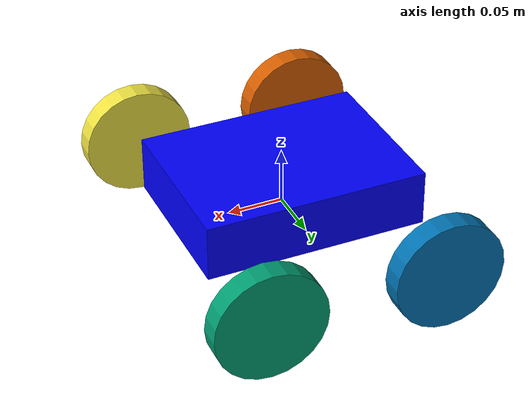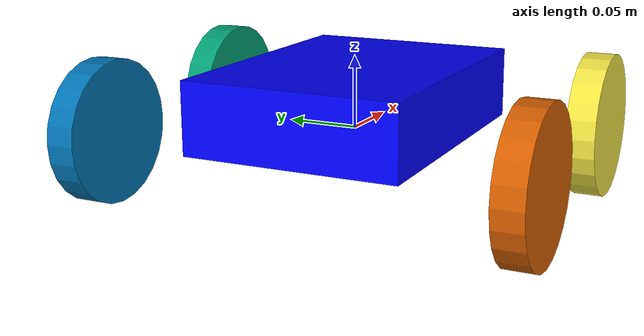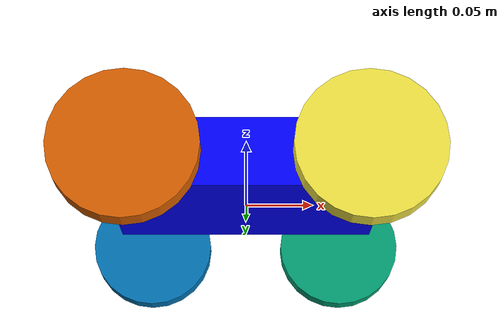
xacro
<?xml version="1.0"?>
<robot name="diff_drive_robot" xmlns:xacro="http://www.ros.org/wiki/xacro">

  <xacro:property name="wheel_radius" value="0.05"/>
  <xacro:property name="wheel_width" value="0.02"/>
  <xacro:property name="wheel_base" value="0.3"/> <xacro:property name="chassis_length" value="0.2"/>
  <xacro:property name="chassis_width" value="0.15"/>
  <xacro:property name="chassis_height" value="0.05"/>
  <xacro:property name="wheel_mass" value="0.5"/>

  <link name="base_footprint"/>

  <joint name="base_footprint_joint" type="fixed">
    <parent link="base_footprint"/>
    <child link="base_link"/>
    <origin xyz="0 0 0" rpy="0 0 0"/>
  </joint>

  <link name="base_link">
    <visual>
      <geometry>
        <box size="${chassis_length} ${chassis_width} ${chassis_height}"/>
      </geometry>
      <material name="blue">
        <color rgba="0 0 1 1"/>
      </material>
      <origin xyz="0 0 0.02" rpy="0 0 0"/>
    </visual>
    <collision>
      <geometry>
        <box size="${chassis_length} ${chassis_width} ${chassis_height}"/>
      </geometry>
      <origin xyz="0 0 0.02" rpy="0 0 0"/>
    </collision>
    <inertial>
      <mass value="2.0"/>
      <inertia ixx="0.01" iyy="0.01" izz="0.01" ixy="0" ixz="0" iyz="0"/>
    </inertial>
  </link>

  <xacro:macro name="wheel" params="prefix x_offset y_offset">
    <link name="${prefix}_wheel_link">
      <visual>
        <geometry>
          <cylinder radius="${wheel_radius}" length="${wheel_width}"/>
        </geometry>
        <origin xyz="0 0 0" rpy="1.570796 0 0"/>
      </visual>
      <collision>
        <geometry>
          <cylinder radius="${wheel_radius}" length="${wheel_width}"/>
        </geometry>
        <origin xyz="0 0 0" rpy="1.570796 0 0"/>
      </collision>
      <inertial>
        <mass value="${wheel_mass}"/>
        <inertia ixx="0.001" iyy="0.001" izz="0.001" ixy="0" ixz="0" iyz="0"/>
      </inertial>
    </link>

    <joint name="${prefix}_wheel_joint" type="continuous">
      <parent link="base_link"/>
      <child link="${prefix}_wheel_link"/>
      <origin xyz="${x_offset} ${y_offset} 0" rpy="0 0 0"/>
      <axis xyz="0 1 0"/>
    </joint>
  </xacro:macro>

  <xacro:wheel prefix="front_left"  x_offset="0.08"  y_offset="${wheel_base/2}"/>
  <xacro:wheel prefix="front_right" x_offset="0.08"  y_offset="-${wheel_base/2}"/>
  <xacro:wheel prefix="rear_left"   x_offset="-0.08" y_offset="${wheel_base/2}"/>
  <xacro:wheel prefix="rear_right"  x_offset="-0.08" y_offset="-${wheel_base/2}"/>

  <link name="laser_link"/>
  <joint name="laser_joint" type="fixed">
    <parent link="base_link"/>
    <child link="laser_link"/>
    <origin xyz="0 0 0.12" rpy="0 0 0"/>
  </joint>

</robot>
